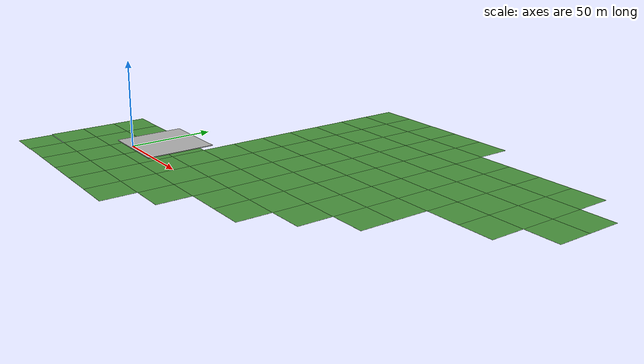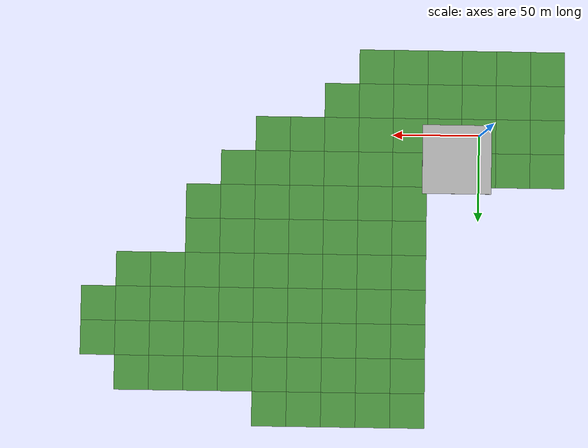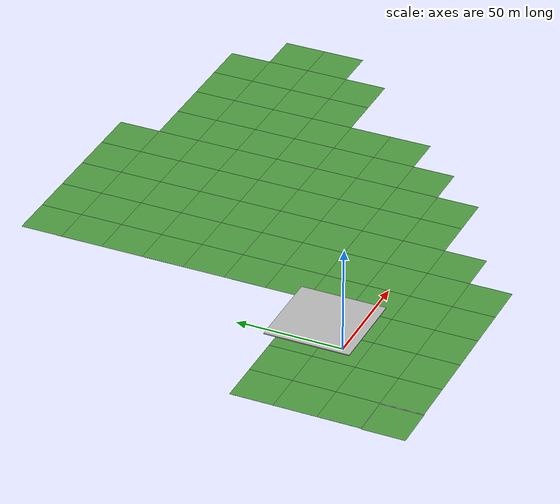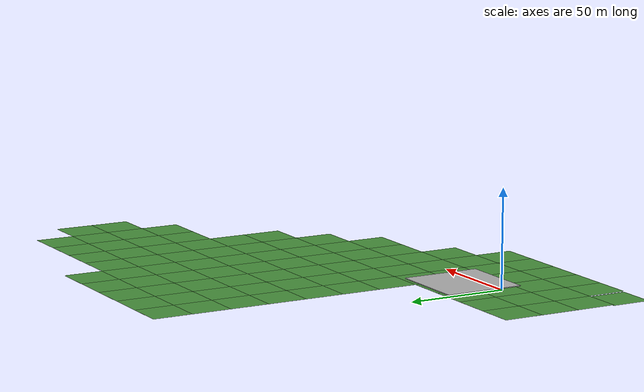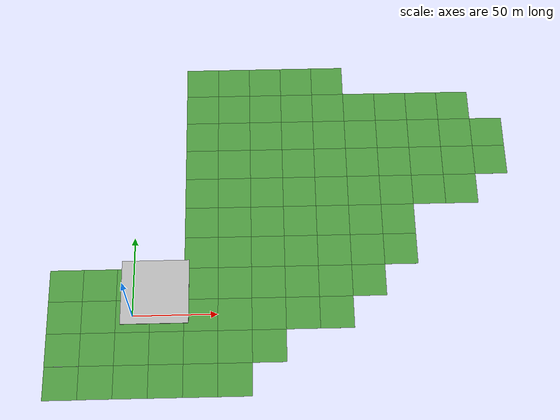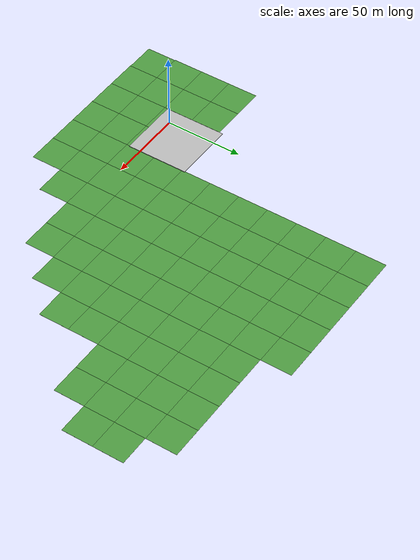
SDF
<sdf version="1.5">
 <world name="default">
  <scene><sky><clouds><speed>3</speed></clouds></sky></scene>
  <plugin name="ros_interface_plugin" filename="librotors_gazebo_ros_interface_plugin.so"/>
  <physics name="default_physics" default="0" type="ode">
   <gravity>0 0 -9.8066</gravity>
   <ode>
    <solver>
     <type>quick</type>
     <iters>35</iters>
     <sor>1.3</sor>
     <use_dynamic_moi_rescaling>0</use_dynamic_moi_rescaling>
    </solver>
    <constraints>
     <cfm>0</cfm>
     <erp>0.2</erp>
     <contact_max_correcting_vel>100</contact_max_correcting_vel>
     <contact_surface_layer>0.001</contact_surface_layer>
    </constraints>
   </ode>
   <max_step_size>0.004</max_step_size>
   <real_time_factor>1</real_time_factor>
   <real_time_update_rate>250</real_time_update_rate>
   <magnetic_field>6.0e-6 2.3e-5 -4.2e-5</magnetic_field>
  </physics>
  <include><uri>model://sun_2</uri></include>
  <include><static>true</static><uri>model://grass_plane</uri></include>
  <include><static>true</static><pose>13 14 3 0 0 0</pose><uri>model://sroof</uri></include>
 </world>
</sdf>
